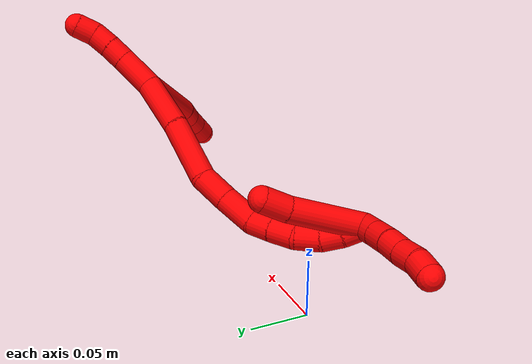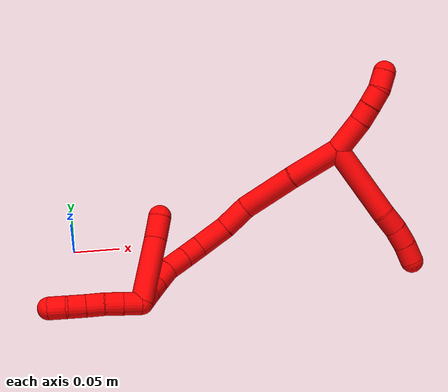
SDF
<sdf version="1.7">
 <world name="default">
  <model name="2">
   <static>0</static>
   <link name="2">
    <collision name="collision-cylinder-e_1_2_8">
     <pose>-0.018029 0.002023 0.039115 -0.051672 -0.431383 0.011324</pose>
     <geometry><cylinder><radius>0.0125</radius><length>0.086235</length></cylinder></geometry>
     <surface>
      <friction><ode><mu>1.16</mu><mu2>1.16</mu2><slip1>0</slip1><slip2>0</slip2></ode></friction>
      <contact><ode><kp>1e+06</kp><kd>1</kd><max_vel>0</max_vel><min_depth>0.001</min_depth></ode></contact>
     </surface>
    </collision>
    <visual name="visual-cylinder-e_1_2_8">
     <pose>-0.018029 0.002023 0.039115 -0.051672 -0.431383 0.011324</pose>
     <geometry><cylinder><radius>0.0125</radius><length>0.086235</length></cylinder></geometry>
     <material><ambient>1 0 0 1</ambient></material>
    </visual>
    <collision name="collision-cylinder-e_2_8_9">
     <pose>-0.039819 0.002986 0.088537 0.102471 -0.348289 -0.018043</pose>
     <geometry><cylinder><radius>0.0125</radius><length>0.022044</length></cylinder></geometry>
     <surface>
      <friction><ode><mu>1.16</mu><mu2>1.16</mu2><slip1>0</slip1><slip2>0</slip2></ode></friction>
      <contact><ode><kp>1e+06</kp><kd>1</kd><max_vel>0</max_vel><min_depth>0.001</min_depth></ode></contact>
     </surface>
    </collision>
    <visual name="visual-cylinder-e_2_8_9">
     <pose>-0.039819 0.002986 0.088537 0.102471 -0.348289 -0.018043</pose>
     <geometry><cylinder><radius>0.0125</radius><length>0.022044</length></cylinder></geometry>
     <material><ambient>1 0 0 1</ambient></material>
    </visual>
    <collision name="collision-cylinder-e_3_9_10">
     <pose>-0.04857 0.001187 0.108145 0.079337 -0.491 -0.019888</pose>
     <geometry><cylinder><radius>0.0125</radius><length>0.021164</length></cylinder></geometry>
     <surface>
      <friction><ode><mu>1.16</mu><mu2>1.16</mu2><slip1>0</slip1><slip2>0</slip2></ode></friction>
      <contact><ode><kp>1e+06</kp><kd>1</kd><max_vel>0</max_vel><min_depth>0.001</min_depth></ode></contact>
     </surface>
    </collision>
    <visual name="visual-cylinder-e_3_9_10">
     <pose>-0.04857 0.001187 0.108145 0.079337 -0.491 -0.019888</pose>
     <geometry><cylinder><radius>0.0125</radius><length>0.021164</length></cylinder></geometry>
     <material><ambient>1 0 0 1</ambient></material>
    </visual>
    <collision name="collision-cylinder-e_4_10_6">
     <pose>-0.059433 -0.000559 0.125823 0.119575 -0.608187 -0.037566</pose>
     <geometry><cylinder><radius>0.0125</radius><length>0.020556</length></cylinder></geometry>
     <surface>
      <friction><ode><mu>1.16</mu><mu2>1.16</mu2><slip1>0</slip1><slip2>0</slip2></ode></friction>
      <contact><ode><kp>1e+06</kp><kd>1</kd><max_vel>0</max_vel><min_depth>0.001</min_depth></ode></contact>
     </surface>
    </collision>
    <visual name="visual-cylinder-e_4_10_6">
     <pose>-0.059433 -0.000559 0.125823 0.119575 -0.608187 -0.037566</pose>
     <geometry><cylinder><radius>0.0125</radius><length>0.020556</length></cylinder></geometry>
     <material><ambient>1 0 0 1</ambient></material>
    </visual>
    <collision name="collision-cylinder-e_1_2_11">
     <pose>0.018888 0.004623 0.002366 -1.09771 1.30249 -0.872307</pose>
     <geometry><cylinder><radius>0.0125</radius><length>0.039178</length></cylinder></geometry>
     <surface>
      <friction><ode><mu>1.16</mu><mu2>1.16</mu2><slip1>0</slip1><slip2>0</slip2></ode></friction>
      <contact><ode><kp>1e+06</kp><kd>1</kd><max_vel>0</max_vel><min_depth>0.001</min_depth></ode></contact>
     </surface>
    </collision>
    <visual name="visual-cylinder-e_1_2_11">
     <pose>0.018888 0.004623 0.002366 -1.09771 1.30249 -0.872307</pose>
     <geometry><cylinder><radius>0.0125</radius><length>0.039178</length></cylinder></geometry>
     <material><ambient>1 0 0 1</ambient></material>
    </visual>
    <collision name="collision-cylinder-e_2_11_12">
     <pose>0.047673 0.011321 0.004861 -1.5089 1.3637 -1.30351</pose>
     <geometry><cylinder><radius>0.0125</radius><length>0.020224</length></cylinder></geometry>
     <surface>
      <friction><ode><mu>1.16</mu><mu2>1.16</mu2><slip1>0</slip1><slip2>0</slip2></ode></friction>
      <contact><ode><kp>1e+06</kp><kd>1</kd><max_vel>0</max_vel><min_depth>0.001</min_depth></ode></contact>
     </surface>
    </collision>
    <visual name="visual-cylinder-e_2_11_12">
     <pose>0.047673 0.011321 0.004861 -1.5089 1.3637 -1.30351</pose>
     <geometry><cylinder><radius>0.0125</radius><length>0.020224</length></cylinder></geometry>
     <material><ambient>1 0 0 1</ambient></material>
    </visual>
    <collision name="collision-cylinder-e_3_12_13">
     <pose>0.06758 0.01484 0.004973 -1.58252 1.42754 -1.43915</pose>
     <geometry><cylinder><radius>0.0125</radius><length>0.020229</length></cylinder></geometry>
     <surface>
      <friction><ode><mu>1.16</mu><mu2>1.16</mu2><slip1>0</slip1><slip2>0</slip2></ode></friction>
      <contact><ode><kp>1e+06</kp><kd>1</kd><max_vel>0</max_vel><min_depth>0.001</min_depth></ode></contact>
     </surface>
    </collision>
    <visual name="visual-cylinder-e_3_12_13">
     <pose>0.06758 0.01484 0.004973 -1.58252 1.42754 -1.43915</pose>
     <geometry><cylinder><radius>0.0125</radius><length>0.020229</length></cylinder></geometry>
     <material><ambient>1 0 0 1</ambient></material>
    </visual>
    <collision name="collision-cylinder-e_4_13_5">
     <pose>0.087545 0.014951 0.003264 2.47436 1.35767 2.33008</pose>
     <geometry><cylinder><radius>0.0125</radius><length>0.020368</length></cylinder></geometry>
     <surface>
      <friction><ode><mu>1.16</mu><mu2>1.16</mu2><slip1>0</slip1><slip2>0</slip2></ode></friction>
      <contact><ode><kp>1e+06</kp><kd>1</kd><max_vel>0</max_vel><min_depth>0.001</min_depth></ode></contact>
     </surface>
    </collision>
    <visual name="visual-cylinder-e_4_13_5">
     <pose>0.087545 0.014951 0.003264 2.47436 1.35767 2.33008</pose>
     <geometry><cylinder><radius>0.0125</radius><length>0.020368</length></cylinder></geometry>
     <material><ambient>1 0 0 1</ambient></material>
    </visual>
    <collision name="collision-cylinder-e_1_2_14">
     <pose>-0.023688 -0.01153 -0.012164 2.38296 -0.955035 -1.82881</pose>
     <geometry><cylinder><radius>0.0125</radius><length>0.058035</length></cylinder></geometry>
     <surface>
      <friction><ode><mu>1.16</mu><mu2>1.16</mu2><slip1>0</slip1><slip2>0</slip2></ode></friction>
      <contact><ode><kp>1e+06</kp><kd>1</kd><max_vel>0</max_vel><min_depth>0.001</min_depth></ode></contact>
     </surface>
    </collision>
    <visual name="visual-cylinder-e_1_2_14">
     <pose>-0.023688 -0.01153 -0.012164 2.38296 -0.955035 -1.82881</pose>
     <geometry><cylinder><radius>0.0125</radius><length>0.058035</length></cylinder></geometry>
     <material><ambient>1 0 0 1</ambient></material>
    </visual>
    <collision name="collision-cylinder-e_2_14_15">
     <pose>-0.073111 -0.038664 -0.035772 2.20355 -0.926055 -1.55586</pose>
     <geometry><cylinder><radius>0.0125</radius><length>0.064397</length></cylinder></geometry>
     <surface>
      <friction><ode><mu>1.16</mu><mu2>1.16</mu2><slip1>0</slip1><slip2>0</slip2></ode></friction>
      <contact><ode><kp>1e+06</kp><kd>1</kd><max_vel>0</max_vel><min_depth>0.001</min_depth></ode></contact>
     </surface>
    </collision>
    <visual name="visual-cylinder-e_2_14_15">
     <pose>-0.073111 -0.038664 -0.035772 2.20355 -0.926055 -1.55586</pose>
     <geometry><cylinder><radius>0.0125</radius><length>0.064397</length></cylinder></geometry>
     <material><ambient>1 0 0 1</ambient></material>
    </visual>
    <collision name="collision-cylinder-e_3_15_16">
     <pose>-0.113782 -0.05744 -0.051493 2.50367 -1.22835 -2.26562</pose>
     <geometry><cylinder><radius>0.0125</radius><length>0.031714</length></cylinder></geometry>
     <surface>
      <friction><ode><mu>1.16</mu><mu2>1.16</mu2><slip1>0</slip1><slip2>0</slip2></ode></friction>
      <contact><ode><kp>1e+06</kp><kd>1</kd><max_vel>0</max_vel><min_depth>0.001</min_depth></ode></contact>
     </surface>
    </collision>
    <visual name="visual-cylinder-e_3_15_16">
     <pose>-0.113782 -0.05744 -0.051493 2.50367 -1.22835 -2.26562</pose>
     <geometry><cylinder><radius>0.0125</radius><length>0.031714</length></cylinder></geometry>
     <material><ambient>1 0 0 1</ambient></material>
    </visual>
    <collision name="collision-cylinder-e_4_16_17">
     <pose>-0.144835 -0.06332 -0.062896 2.77825 -1.12893 -2.57687</pose>
     <geometry><cylinder><radius>0.0125</radius><length>0.035658</length></cylinder></geometry>
     <surface>
      <friction><ode><mu>1.16</mu><mu2>1.16</mu2><slip1>0</slip1><slip2>0</slip2></ode></friction>
      <contact><ode><kp>1e+06</kp><kd>1</kd><max_vel>0</max_vel><min_depth>0.001</min_depth></ode></contact>
     </surface>
    </collision>
    <visual name="visual-cylinder-e_4_16_17">
     <pose>-0.144835 -0.06332 -0.062896 2.77825 -1.12893 -2.57687</pose>
     <geometry><cylinder><radius>0.0125</radius><length>0.035658</length></cylinder></geometry>
     <material><ambient>1 0 0 1</ambient></material>
    </visual>
    <collision name="collision-cylinder-e_5_17_18">
     <pose>-0.170346 -0.06438 -0.074891 -2.81474 -1.07013 2.59892</pose>
     <geometry><cylinder><radius>0.0125</radius><length>0.021418</length></cylinder></geometry>
     <surface>
      <friction><ode><mu>1.16</mu><mu2>1.16</mu2><slip1>0</slip1><slip2>0</slip2></ode></friction>
      <contact><ode><kp>1e+06</kp><kd>1</kd><max_vel>0</max_vel><min_depth>0.001</min_depth></ode></contact>
     </surface>
    </collision>
    <visual name="visual-cylinder-e_5_17_18">
     <pose>-0.170346 -0.06438 -0.074891 -2.81474 -1.07013 2.59892</pose>
     <geometry><cylinder><radius>0.0125</radius><length>0.021418</length></cylinder></geometry>
     <material><ambient>1 0 0 1</ambient></material>
    </visual>
    <collision name="collision-cylinder-e_6_18_19">
     <pose>-0.190115 -0.060188 -0.085347 -2.7148 -1.03652 2.4153</pose>
     <geometry><cylinder><radius>0.0125</radius><length>0.024108</length></cylinder></geometry>
     <surface>
      <friction><ode><mu>1.16</mu><mu2>1.16</mu2><slip1>0</slip1><slip2>0</slip2></ode></friction>
      <contact><ode><kp>1e+06</kp><kd>1</kd><max_vel>0</max_vel><min_depth>0.001</min_depth></ode></contact>
     </surface>
    </collision>
    <visual name="visual-cylinder-e_6_18_19">
     <pose>-0.190115 -0.060188 -0.085347 -2.7148 -1.03652 2.4153</pose>
     <geometry><cylinder><radius>0.0125</radius><length>0.024108</length></cylinder></geometry>
     <material><ambient>1 0 0 1</ambient></material>
    </visual>
    <collision name="collision-cylinder-e_7_19_20">
     <pose>-0.210582 -0.052529 -0.093763 -2.0757 -1.04568 1.54757</pose>
     <geometry><cylinder><radius>0.0125</radius><length>0.023329</length></cylinder></geometry>
     <surface>
      <friction><ode><mu>1.16</mu><mu2>1.16</mu2><slip1>0</slip1><slip2>0</slip2></ode></friction>
      <contact><ode><kp>1e+06</kp><kd>1</kd><max_vel>0</max_vel><min_depth>0.001</min_depth></ode></contact>
     </surface>
    </collision>
    <visual name="visual-cylinder-e_7_19_20">
     <pose>-0.210582 -0.052529 -0.093763 -2.0757 -1.04568 1.54757</pose>
     <geometry><cylinder><radius>0.0125</radius><length>0.023329</length></cylinder></geometry>
     <material><ambient>1 0 0 1</ambient></material>
    </visual>
    <collision name="collision-cylinder-e_8_20_21">
     <pose>-0.22777 -0.040709 -0.099047 -1.92196 -0.782364 1.06657</pose>
     <geometry><cylinder><radius>0.0125</radius><length>0.020128</length></cylinder></geometry>
     <surface>
      <friction><ode><mu>1.16</mu><mu2>1.16</mu2><slip1>0</slip1><slip2>0</slip2></ode></friction>
      <contact><ode><kp>1e+06</kp><kd>1</kd><max_vel>0</max_vel><min_depth>0.001</min_depth></ode></contact>
     </surface>
    </collision>
    <visual name="visual-cylinder-e_8_20_21">
     <pose>-0.22777 -0.040709 -0.099047 -1.92196 -0.782364 1.06657</pose>
     <geometry><cylinder><radius>0.0125</radius><length>0.020128</length></cylinder></geometry>
     <material><ambient>1 0 0 1</ambient></material>
    </visual>
    <collision name="collision-cylinder-e_9_21_1">
     <pose>-0.241063 -0.025796 -0.104082 -1.87516 -0.624166 0.828199</pose>
     <geometry><cylinder><radius>0.0125</radius><length>0.021213</length></cylinder></geometry>
     <surface>
      <friction><ode><mu>1.16</mu><mu2>1.16</mu2><slip1>0</slip1><slip2>0</slip2></ode></friction>
      <contact><ode><kp>1e+06</kp><kd>1</kd><max_vel>0</max_vel><min_depth>0.001</min_depth></ode></contact>
     </surface>
    </collision>
    <visual name="visual-cylinder-e_9_21_1">
     <pose>-0.241063 -0.025796 -0.104082 -1.87516 -0.624166 0.828199</pose>
     <geometry><cylinder><radius>0.0125</radius><length>0.021213</length></cylinder></geometry>
     <material><ambient>1 0 0 1</ambient></material>
    </visual>
    <collision name="collision-cylinder-e_1_1_22">
     <pose>-0.213236 -0.029711 -0.114233 2.129 1.17304 1.75081</pose>
     <geometry><cylinder><radius>0.0125</radius><length>0.073814</length></cylinder></geometry>
     <surface>
      <friction><ode><mu>1.16</mu><mu2>1.16</mu2><slip1>0</slip1><slip2>0</slip2></ode></friction>
      <contact><ode><kp>1e+06</kp><kd>1</kd><max_vel>0</max_vel><min_depth>0.001</min_depth></ode></contact>
     </surface>
    </collision>
    <visual name="visual-cylinder-e_1_1_22">
     <pose>-0.213236 -0.029711 -0.114233 2.129 1.17304 1.75081</pose>
     <geometry><cylinder><radius>0.0125</radius><length>0.073814</length></cylinder></geometry>
     <material><ambient>1 0 0 1</ambient></material>
    </visual>
    <collision name="collision-cylinder-e_2_22_4">
     <pose>-0.16685 -0.044411 -0.125272 2.50305 1.23471 2.27</pose>
     <geometry><cylinder><radius>0.0125</radius><length>0.026186</length></cylinder></geometry>
     <surface>
      <friction><ode><mu>1.16</mu><mu2>1.16</mu2><slip1>0</slip1><slip2>0</slip2></ode></friction>
      <contact><ode><kp>1e+06</kp><kd>1</kd><max_vel>0</max_vel><min_depth>0.001</min_depth></ode></contact>
     </surface>
    </collision>
    <visual name="visual-cylinder-e_2_22_4">
     <pose>-0.16685 -0.044411 -0.125272 2.50305 1.23471 2.27</pose>
     <geometry><cylinder><radius>0.0125</radius><length>0.026186</length></cylinder></geometry>
     <material><ambient>1 0 0 1</ambient></material>
    </visual>
    <collision name="collision-cylinder-e_1_1_23">
     <pose>-0.252237 -0.018473 -0.11529 3.03906 -0.520731 -2.76104</pose>
     <geometry><cylinder><radius>0.0125</radius><length>0.02</length></cylinder></geometry>
     <surface>
      <friction><ode><mu>1.16</mu><mu2>1.16</mu2><slip1>0</slip1><slip2>0</slip2></ode></friction>
      <contact><ode><kp>1e+06</kp><kd>1</kd><max_vel>0</max_vel><min_depth>0.001</min_depth></ode></contact>
     </surface>
    </collision>
    <visual name="visual-cylinder-e_1_1_23">
     <pose>-0.252237 -0.018473 -0.11529 3.03906 -0.520731 -2.76104</pose>
     <geometry><cylinder><radius>0.0125</radius><length>0.02</length></cylinder></geometry>
     <material><ambient>1 0 0 1</ambient></material>
    </visual>
    <collision name="collision-cylinder-e_2_23_24">
     <pose>-0.262125 -0.020316 -0.132576 3.03172 -0.513555 -2.7287</pose>
     <geometry><cylinder><radius>0.0125</radius><length>0.02</length></cylinder></geometry>
     <surface>
      <friction><ode><mu>1.16</mu><mu2>1.16</mu2><slip1>0</slip1><slip2>0</slip2></ode></friction>
      <contact><ode><kp>1e+06</kp><kd>1</kd><max_vel>0</max_vel><min_depth>0.001</min_depth></ode></contact>
     </surface>
    </collision>
    <visual name="visual-cylinder-e_2_23_24">
     <pose>-0.262125 -0.020316 -0.132576 3.03172 -0.513555 -2.7287</pose>
     <geometry><cylinder><radius>0.0125</radius><length>0.02</length></cylinder></geometry>
     <material><ambient>1 0 0 1</ambient></material>
    </visual>
    <collision name="collision-cylinder-e_3_24_25">
     <pose>-0.272586 -0.022937 -0.149385 2.93992 -0.588223 -2.49682</pose>
     <geometry><cylinder><radius>0.0125</radius><length>0.02</length></cylinder></geometry>
     <surface>
      <friction><ode><mu>1.16</mu><mu2>1.16</mu2><slip1>0</slip1><slip2>0</slip2></ode></friction>
      <contact><ode><kp>1e+06</kp><kd>1</kd><max_vel>0</max_vel><min_depth>0.001</min_depth></ode></contact>
     </surface>
    </collision>
    <visual name="visual-cylinder-e_3_24_25">
     <pose>-0.272586 -0.022937 -0.149385 2.93992 -0.588223 -2.49682</pose>
     <geometry><cylinder><radius>0.0125</radius><length>0.02</length></cylinder></geometry>
     <material><ambient>1 0 0 1</ambient></material>
    </visual>
    <collision name="collision-cylinder-e_4_25_26">
     <pose>-0.283468 -0.025344 -0.165962 3.054 -0.562518 -2.84051</pose>
     <geometry><cylinder><radius>0.0125</radius><length>0.02</length></cylinder></geometry>
     <surface>
      <friction><ode><mu>1.16</mu><mu2>1.16</mu2><slip1>0</slip1><slip2>0</slip2></ode></friction>
      <contact><ode><kp>1e+06</kp><kd>1</kd><max_vel>0</max_vel><min_depth>0.001</min_depth></ode></contact>
     </surface>
    </collision>
    <visual name="visual-cylinder-e_4_25_26">
     <pose>-0.283468 -0.025344 -0.165962 3.054 -0.562518 -2.84051</pose>
     <geometry><cylinder><radius>0.0125</radius><length>0.02</length></cylinder></geometry>
     <material><ambient>1 0 0 1</ambient></material>
    </visual>
    <collision name="collision-cylinder-e_5_26_3">
     <pose>-0.294039 -0.029276 -0.182286 2.75749 -0.551314 -1.9371</pose>
     <geometry><cylinder><radius>0.0125</radius><length>0.02</length></cylinder></geometry>
     <surface>
      <friction><ode><mu>1.16</mu><mu2>1.16</mu2><slip1>0</slip1><slip2>0</slip2></ode></friction>
      <contact><ode><kp>1e+06</kp><kd>1</kd><max_vel>0</max_vel><min_depth>0.001</min_depth></ode></contact>
     </surface>
    </collision>
    <visual name="visual-cylinder-e_5_26_3">
     <pose>-0.294039 -0.029276 -0.182286 2.75749 -0.551314 -1.9371</pose>
     <geometry><cylinder><radius>0.0125</radius><length>0.02</length></cylinder></geometry>
     <material><ambient>1 0 0 1</ambient></material>
    </visual>
    <collision name="collision-sphere-3">
     <pose>-0.299277 -0.032468 -0.190184 0 -0 0</pose>
     <geometry><sphere><radius>0.0125</radius></sphere></geometry>
     <surface>
      <friction><ode><mu>1.16</mu><mu2>1.16</mu2><slip1>0</slip1><slip2>0</slip2></ode></friction>
      <contact><ode><kp>1e+06</kp><kd>1</kd><max_vel>0</max_vel><min_depth>0.001</min_depth></ode></contact>
     </surface>
    </collision>
    <visual name="visual-sphere-3">
     <pose>-0.299277 -0.032468 -0.190184 0 -0 0</pose>
     <geometry><sphere><radius>0.0125</radius></sphere></geometry>
     <material><ambient>1 0 0 1</ambient></material>
    </visual>
    <collision name="collision-sphere-26">
     <pose>-0.288801 -0.026084 -0.174389 0 -0 0</pose>
     <geometry><sphere><radius>0.0125</radius></sphere></geometry>
     <surface>
      <friction><ode><mu>1.16</mu><mu2>1.16</mu2><slip1>0</slip1><slip2>0</slip2></ode></friction>
      <contact><ode><kp>1e+06</kp><kd>1</kd><max_vel>0</max_vel><min_depth>0.001</min_depth></ode></contact>
     </surface>
    </collision>
    <visual name="visual-sphere-26">
     <pose>-0.288801 -0.026084 -0.174389 0 -0 0</pose>
     <geometry><sphere><radius>0.0125</radius></sphere></geometry>
     <material><ambient>1 0 0 1</ambient></material>
    </visual>
    <collision name="collision-sphere-25">
     <pose>-0.278135 -0.024604 -0.157535 0 -0 0</pose>
     <geometry><sphere><radius>0.0125</radius></sphere></geometry>
     <surface>
      <friction><ode><mu>1.16</mu><mu2>1.16</mu2><slip1>0</slip1><slip2>0</slip2></ode></friction>
      <contact><ode><kp>1e+06</kp><kd>1</kd><max_vel>0</max_vel><min_depth>0.001</min_depth></ode></contact>
     </surface>
    </collision>
    <visual name="visual-sphere-25">
     <pose>-0.278135 -0.024604 -0.157535 0 -0 0</pose>
     <geometry><sphere><radius>0.0125</radius></sphere></geometry>
     <material><ambient>1 0 0 1</ambient></material>
    </visual>
    <collision name="collision-sphere-24">
     <pose>-0.267037 -0.021271 -0.141234 0 -0 0</pose>
     <geometry><sphere><radius>0.0125</radius></sphere></geometry>
     <surface>
      <friction><ode><mu>1.16</mu><mu2>1.16</mu2><slip1>0</slip1><slip2>0</slip2></ode></friction>
      <contact><ode><kp>1e+06</kp><kd>1</kd><max_vel>0</max_vel><min_depth>0.001</min_depth></ode></contact>
     </surface>
    </collision>
    <visual name="visual-sphere-24">
     <pose>-0.267037 -0.021271 -0.141234 0 -0 0</pose>
     <geometry><sphere><radius>0.0125</radius></sphere></geometry>
     <material><ambient>1 0 0 1</ambient></material>
    </visual>
    <collision name="collision-sphere-23">
     <pose>-0.257212 -0.019361 -0.123919 0 -0 0</pose>
     <geometry><sphere><radius>0.0125</radius></sphere></geometry>
     <surface>
      <friction><ode><mu>1.16</mu><mu2>1.16</mu2><slip1>0</slip1><slip2>0</slip2></ode></friction>
      <contact><ode><kp>1e+06</kp><kd>1</kd><max_vel>0</max_vel><min_depth>0.001</min_depth></ode></contact>
     </surface>
    </collision>
    <visual name="visual-sphere-23">
     <pose>-0.257212 -0.019361 -0.123919 0 -0 0</pose>
     <geometry><sphere><radius>0.0125</radius></sphere></geometry>
     <material><ambient>1 0 0 1</ambient></material>
    </visual>
    <collision name="collision-sphere-4">
     <pose>-0.154489 -0.046984 -0.12874 0 -0 0</pose>
     <geometry><sphere><radius>0.0125</radius></sphere></geometry>
     <surface>
      <friction><ode><mu>1.16</mu><mu2>1.16</mu2><slip1>0</slip1><slip2>0</slip2></ode></friction>
      <contact><ode><kp>1e+06</kp><kd>1</kd><max_vel>0</max_vel><min_depth>0.001</min_depth></ode></contact>
     </surface>
    </collision>
    <visual name="visual-sphere-4">
     <pose>-0.154489 -0.046984 -0.12874 0 -0 0</pose>
     <geometry><sphere><radius>0.0125</radius></sphere></geometry>
     <material><ambient>1 0 0 1</ambient></material>
    </visual>
    <collision name="collision-sphere-22">
     <pose>-0.17921 -0.041837 -0.121805 0 -0 0</pose>
     <geometry><sphere><radius>0.0125</radius></sphere></geometry>
     <surface>
      <friction><ode><mu>1.16</mu><mu2>1.16</mu2><slip1>0</slip1><slip2>0</slip2></ode></friction>
      <contact><ode><kp>1e+06</kp><kd>1</kd><max_vel>0</max_vel><min_depth>0.001</min_depth></ode></contact>
     </surface>
    </collision>
    <visual name="visual-sphere-22">
     <pose>-0.17921 -0.041837 -0.121805 0 -0 0</pose>
     <geometry><sphere><radius>0.0125</radius></sphere></geometry>
     <material><ambient>1 0 0 1</ambient></material>
    </visual>
    <collision name="collision-sphere-1">
     <pose>-0.247261 -0.017585 -0.106661 0 -0 0</pose>
     <geometry><sphere><radius>0.0125</radius></sphere></geometry>
     <surface>
      <friction><ode><mu>1.16</mu><mu2>1.16</mu2><slip1>0</slip1><slip2>0</slip2></ode></friction>
      <contact><ode><kp>1e+06</kp><kd>1</kd><max_vel>0</max_vel><min_depth>0.001</min_depth></ode></contact>
     </surface>
    </collision>
    <visual name="visual-sphere-1">
     <pose>-0.247261 -0.017585 -0.106661 0 -0 0</pose>
     <geometry><sphere><radius>0.0125</radius></sphere></geometry>
     <material><ambient>1 0 0 1</ambient></material>
    </visual>
    <collision name="collision-sphere-21">
     <pose>-0.234864 -0.034007 -0.101502 0 -0 0</pose>
     <geometry><sphere><radius>0.0125</radius></sphere></geometry>
     <surface>
      <friction><ode><mu>1.16</mu><mu2>1.16</mu2><slip1>0</slip1><slip2>0</slip2></ode></friction>
      <contact><ode><kp>1e+06</kp><kd>1</kd><max_vel>0</max_vel><min_depth>0.001</min_depth></ode></contact>
     </surface>
    </collision>
    <visual name="visual-sphere-21">
     <pose>-0.234864 -0.034007 -0.101502 0 -0 0</pose>
     <geometry><sphere><radius>0.0125</radius></sphere></geometry>
     <material><ambient>1 0 0 1</ambient></material>
    </visual>
    <collision name="collision-sphere-11">
     <pose>0.037776 0.009245 0.004732 0 -0 0</pose>
     <geometry><sphere><radius>0.0125</radius></sphere></geometry>
     <surface>
      <friction><ode><mu>1.16</mu><mu2>1.16</mu2><slip1>0</slip1><slip2>0</slip2></ode></friction>
      <contact><ode><kp>1e+06</kp><kd>1</kd><max_vel>0</max_vel><min_depth>0.001</min_depth></ode></contact>
     </surface>
    </collision>
    <visual name="visual-sphere-11">
     <pose>0.037776 0.009245 0.004732 0 -0 0</pose>
     <geometry><sphere><radius>0.0125</radius></sphere></geometry>
     <material><ambient>1 0 0 1</ambient></material>
    </visual>
    <collision name="collision-sphere-6">
     <pose>-0.065305 -0.001565 0.134198 0 -0 0</pose>
     <geometry><sphere><radius>0.0125</radius></sphere></geometry>
     <surface>
      <friction><ode><mu>1.16</mu><mu2>1.16</mu2><slip1>0</slip1><slip2>0</slip2></ode></friction>
      <contact><ode><kp>1e+06</kp><kd>1</kd><max_vel>0</max_vel><min_depth>0.001</min_depth></ode></contact>
     </surface>
    </collision>
    <visual name="visual-sphere-6">
     <pose>-0.065305 -0.001565 0.134198 0 -0 0</pose>
     <geometry><sphere><radius>0.0125</radius></sphere></geometry>
     <material><ambient>1 0 0 1</ambient></material>
    </visual>
    <collision name="collision-sphere-10">
     <pose>-0.05356 0.000447 0.117448 0 -0 0</pose>
     <geometry><sphere><radius>0.0125</radius></sphere></geometry>
     <surface>
      <friction><ode><mu>1.16</mu><mu2>1.16</mu2><slip1>0</slip1><slip2>0</slip2></ode></friction>
      <contact><ode><kp>1e+06</kp><kd>1</kd><max_vel>0</max_vel><min_depth>0.001</min_depth></ode></contact>
     </surface>
    </collision>
    <visual name="visual-sphere-10">
     <pose>-0.05356 0.000447 0.117448 0 -0 0</pose>
     <geometry><sphere><radius>0.0125</radius></sphere></geometry>
     <material><ambient>1 0 0 1</ambient></material>
    </visual>
    <collision name="collision-sphere-9">
     <pose>-0.043581 0.001926 0.098842 0 -0 0</pose>
     <geometry><sphere><radius>0.0125</radius></sphere></geometry>
     <surface>
      <friction><ode><mu>1.16</mu><mu2>1.16</mu2><slip1>0</slip1><slip2>0</slip2></ode></friction>
      <contact><ode><kp>1e+06</kp><kd>1</kd><max_vel>0</max_vel><min_depth>0.001</min_depth></ode></contact>
     </surface>
    </collision>
    <visual name="visual-sphere-9">
     <pose>-0.043581 0.001926 0.098842 0 -0 0</pose>
     <geometry><sphere><radius>0.0125</radius></sphere></geometry>
     <material><ambient>1 0 0 1</ambient></material>
    </visual>
    <collision name="collision-sphere-2">
     <geometry><sphere><radius>0.0125</radius></sphere></geometry>
     <surface>
      <friction><ode><mu>1.16</mu><mu2>1.16</mu2><slip1>0</slip1><slip2>0</slip2></ode></friction>
      <contact><ode><kp>1e+06</kp><kd>1</kd><max_vel>0</max_vel><min_depth>0.001</min_depth></ode></contact>
     </surface>
    </collision>
    <visual name="visual-sphere-2">
     <geometry><sphere><radius>0.0125</radius></sphere></geometry>
     <material><ambient>1 0 0 1</ambient></material>
    </visual>
    <collision name="collision-sphere-19">
     <pose>-0.200489 -0.057647 -0.090935 0 -0 0</pose>
     <geometry><sphere><radius>0.0125</radius></sphere></geometry>
     <surface>
      <friction><ode><mu>1.16</mu><mu2>1.16</mu2><slip1>0</slip1><slip2>0</slip2></ode></friction>
      <contact><ode><kp>1e+06</kp><kd>1</kd><max_vel>0</max_vel><min_depth>0.001</min_depth></ode></contact>
     </surface>
    </collision>
    <visual name="visual-sphere-19">
     <pose>-0.200489 -0.057647 -0.090935 0 -0 0</pose>
     <geometry><sphere><radius>0.0125</radius></sphere></geometry>
     <material><ambient>1 0 0 1</ambient></material>
    </visual>
    <collision name="collision-sphere-8">
     <pose>-0.036057 0.004046 0.078231 0 -0 0</pose>
     <geometry><sphere><radius>0.0125</radius></sphere></geometry>
     <surface>
      <friction><ode><mu>1.16</mu><mu2>1.16</mu2><slip1>0</slip1><slip2>0</slip2></ode></friction>
      <contact><ode><kp>1e+06</kp><kd>1</kd><max_vel>0</max_vel><min_depth>0.001</min_depth></ode></contact>
     </surface>
    </collision>
    <visual name="visual-sphere-8">
     <pose>-0.036057 0.004046 0.078231 0 -0 0</pose>
     <geometry><sphere><radius>0.0125</radius></sphere></geometry>
     <material><ambient>1 0 0 1</ambient></material>
    </visual>
    <collision name="collision-sphere-12">
     <pose>0.057569 0.013396 0.00499 0 -0 0</pose>
     <geometry><sphere><radius>0.0125</radius></sphere></geometry>
     <surface>
      <friction><ode><mu>1.16</mu><mu2>1.16</mu2><slip1>0</slip1><slip2>0</slip2></ode></friction>
      <contact><ode><kp>1e+06</kp><kd>1</kd><max_vel>0</max_vel><min_depth>0.001</min_depth></ode></contact>
     </surface>
    </collision>
    <visual name="visual-sphere-12">
     <pose>0.057569 0.013396 0.00499 0 -0 0</pose>
     <geometry><sphere><radius>0.0125</radius></sphere></geometry>
     <material><ambient>1 0 0 1</ambient></material>
    </visual>
    <collision name="collision-sphere-13">
     <pose>0.077591 0.016284 0.004956 0 -0 0</pose>
     <geometry><sphere><radius>0.0125</radius></sphere></geometry>
     <surface>
      <friction><ode><mu>1.16</mu><mu2>1.16</mu2><slip1>0</slip1><slip2>0</slip2></ode></friction>
      <contact><ode><kp>1e+06</kp><kd>1</kd><max_vel>0</max_vel><min_depth>0.001</min_depth></ode></contact>
     </surface>
    </collision>
    <visual name="visual-sphere-13">
     <pose>0.077591 0.016284 0.004956 0 -0 0</pose>
     <geometry><sphere><radius>0.0125</radius></sphere></geometry>
     <material><ambient>1 0 0 1</ambient></material>
    </visual>
    <collision name="collision-sphere-5">
     <pose>0.097498 0.013618 0.001571 0 -0 0</pose>
     <geometry><sphere><radius>0.0125</radius></sphere></geometry>
     <surface>
      <friction><ode><mu>1.16</mu><mu2>1.16</mu2><slip1>0</slip1><slip2>0</slip2></ode></friction>
      <contact><ode><kp>1e+06</kp><kd>1</kd><max_vel>0</max_vel><min_depth>0.001</min_depth></ode></contact>
     </surface>
    </collision>
    <visual name="visual-sphere-5">
     <pose>0.097498 0.013618 0.001571 0 -0 0</pose>
     <geometry><sphere><radius>0.0125</radius></sphere></geometry>
     <material><ambient>1 0 0 1</ambient></material>
    </visual>
    <collision name="collision-sphere-14">
     <pose>-0.047376 -0.023059 -0.024328 0 -0 0</pose>
     <geometry><sphere><radius>0.0125</radius></sphere></geometry>
     <surface>
      <friction><ode><mu>1.16</mu><mu2>1.16</mu2><slip1>0</slip1><slip2>0</slip2></ode></friction>
      <contact><ode><kp>1e+06</kp><kd>1</kd><max_vel>0</max_vel><min_depth>0.001</min_depth></ode></contact>
     </surface>
    </collision>
    <visual name="visual-sphere-14">
     <pose>-0.047376 -0.023059 -0.024328 0 -0 0</pose>
     <geometry><sphere><radius>0.0125</radius></sphere></geometry>
     <material><ambient>1 0 0 1</ambient></material>
    </visual>
    <collision name="collision-sphere-15">
     <pose>-0.098846 -0.054269 -0.047215 0 -0 0</pose>
     <geometry><sphere><radius>0.0125</radius></sphere></geometry>
     <surface>
      <friction><ode><mu>1.16</mu><mu2>1.16</mu2><slip1>0</slip1><slip2>0</slip2></ode></friction>
      <contact><ode><kp>1e+06</kp><kd>1</kd><max_vel>0</max_vel><min_depth>0.001</min_depth></ode></contact>
     </surface>
    </collision>
    <visual name="visual-sphere-15">
     <pose>-0.098846 -0.054269 -0.047215 0 -0 0</pose>
     <geometry><sphere><radius>0.0125</radius></sphere></geometry>
     <material><ambient>1 0 0 1</ambient></material>
    </visual>
    <collision name="collision-sphere-16">
     <pose>-0.128718 -0.060611 -0.05577 0 -0 0</pose>
     <geometry><sphere><radius>0.0125</radius></sphere></geometry>
     <surface>
      <friction><ode><mu>1.16</mu><mu2>1.16</mu2><slip1>0</slip1><slip2>0</slip2></ode></friction>
      <contact><ode><kp>1e+06</kp><kd>1</kd><max_vel>0</max_vel><min_depth>0.001</min_depth></ode></contact>
     </surface>
    </collision>
    <visual name="visual-sphere-16">
     <pose>-0.128718 -0.060611 -0.05577 0 -0 0</pose>
     <geometry><sphere><radius>0.0125</radius></sphere></geometry>
     <material><ambient>1 0 0 1</ambient></material>
    </visual>
    <collision name="collision-sphere-17">
     <pose>-0.160952 -0.06603 -0.070023 0 -0 0</pose>
     <geometry><sphere><radius>0.0125</radius></sphere></geometry>
     <surface>
      <friction><ode><mu>1.16</mu><mu2>1.16</mu2><slip1>0</slip1><slip2>0</slip2></ode></friction>
      <contact><ode><kp>1e+06</kp><kd>1</kd><max_vel>0</max_vel><min_depth>0.001</min_depth></ode></contact>
     </surface>
    </collision>
    <visual name="visual-sphere-17">
     <pose>-0.160952 -0.06603 -0.070023 0 -0 0</pose>
     <geometry><sphere><radius>0.0125</radius></sphere></geometry>
     <material><ambient>1 0 0 1</ambient></material>
    </visual>
    <collision name="collision-sphere-18">
     <pose>-0.179741 -0.062729 -0.079759 0 -0 0</pose>
     <geometry><sphere><radius>0.0125</radius></sphere></geometry>
     <surface>
      <friction><ode><mu>1.16</mu><mu2>1.16</mu2><slip1>0</slip1><slip2>0</slip2></ode></friction>
      <contact><ode><kp>1e+06</kp><kd>1</kd><max_vel>0</max_vel><min_depth>0.001</min_depth></ode></contact>
     </surface>
    </collision>
    <visual name="visual-sphere-18">
     <pose>-0.179741 -0.062729 -0.079759 0 -0 0</pose>
     <geometry><sphere><radius>0.0125</radius></sphere></geometry>
     <material><ambient>1 0 0 1</ambient></material>
    </visual>
    <collision name="collision-sphere-20">
     <pose>-0.220675 -0.047412 -0.096592 0 -0 0</pose>
     <geometry><sphere><radius>0.0125</radius></sphere></geometry>
     <surface>
      <friction><ode><mu>1.16</mu><mu2>1.16</mu2><slip1>0</slip1><slip2>0</slip2></ode></friction>
      <contact><ode><kp>1e+06</kp><kd>1</kd><max_vel>0</max_vel><min_depth>0.001</min_depth></ode></contact>
     </surface>
    </collision>
    <visual name="visual-sphere-20">
     <pose>-0.220675 -0.047412 -0.096592 0 -0 0</pose>
     <geometry><sphere><radius>0.0125</radius></sphere></geometry>
     <material><ambient>1 0 0 1</ambient></material>
    </visual>
    <inertial>
     <pose>-0.113232 -0.022766 -0.044 0 -0 0</pose>
     <mass>0.75</mass>
     <inertia><ixx>1.7e-05</ixx><ixy>0</ixy><ixz>0</ixz><iyy>0.000139</iyy><iyz>0</iyz><izz>5.4e-05</izz></inertia>
    </inertial>
   </link>
   <pose>0.294505 0.028484 0.107538 2.13155 -0.496856 0.900865</pose>
  </model>
 </world>
</sdf>
